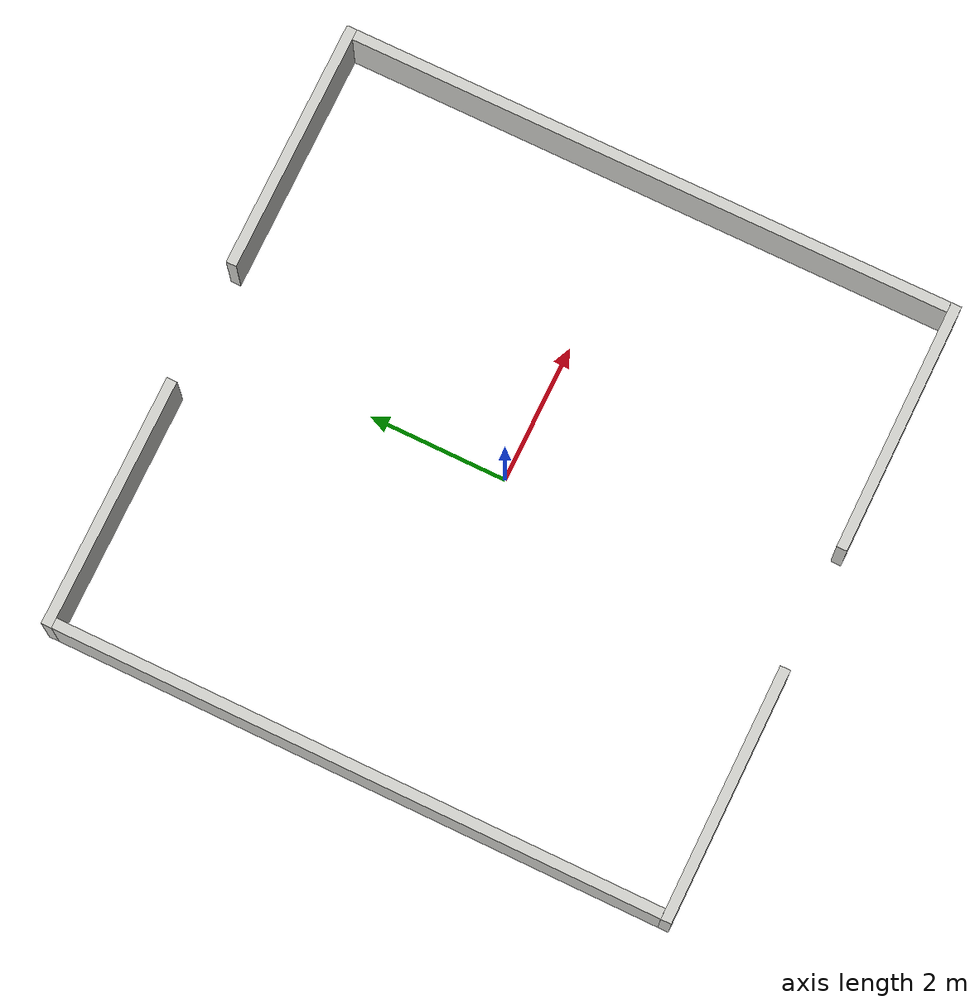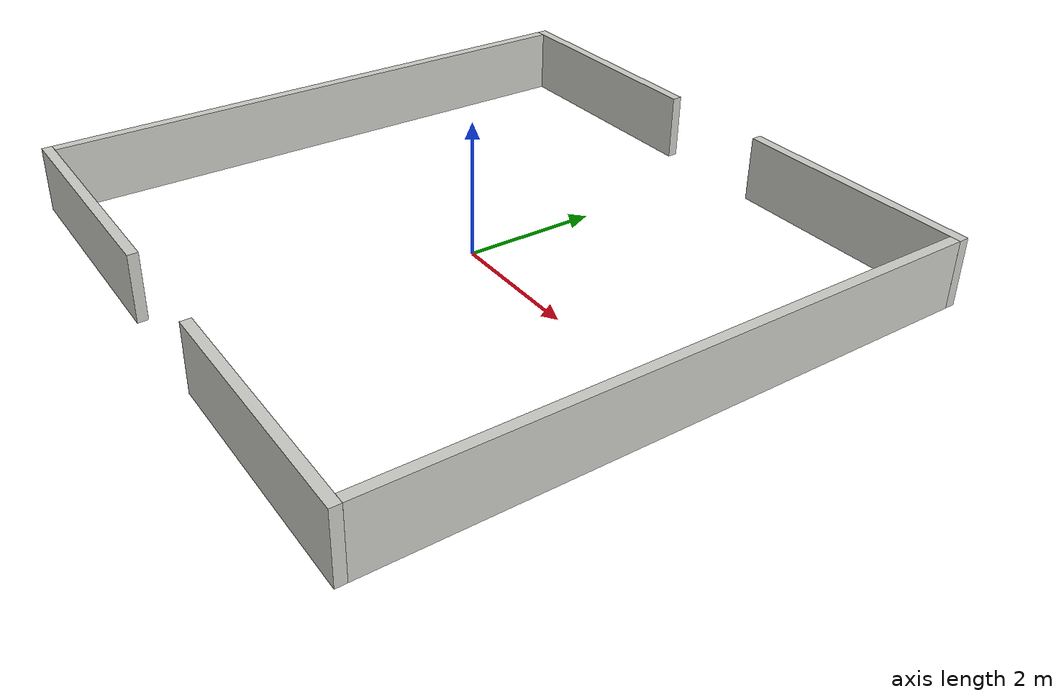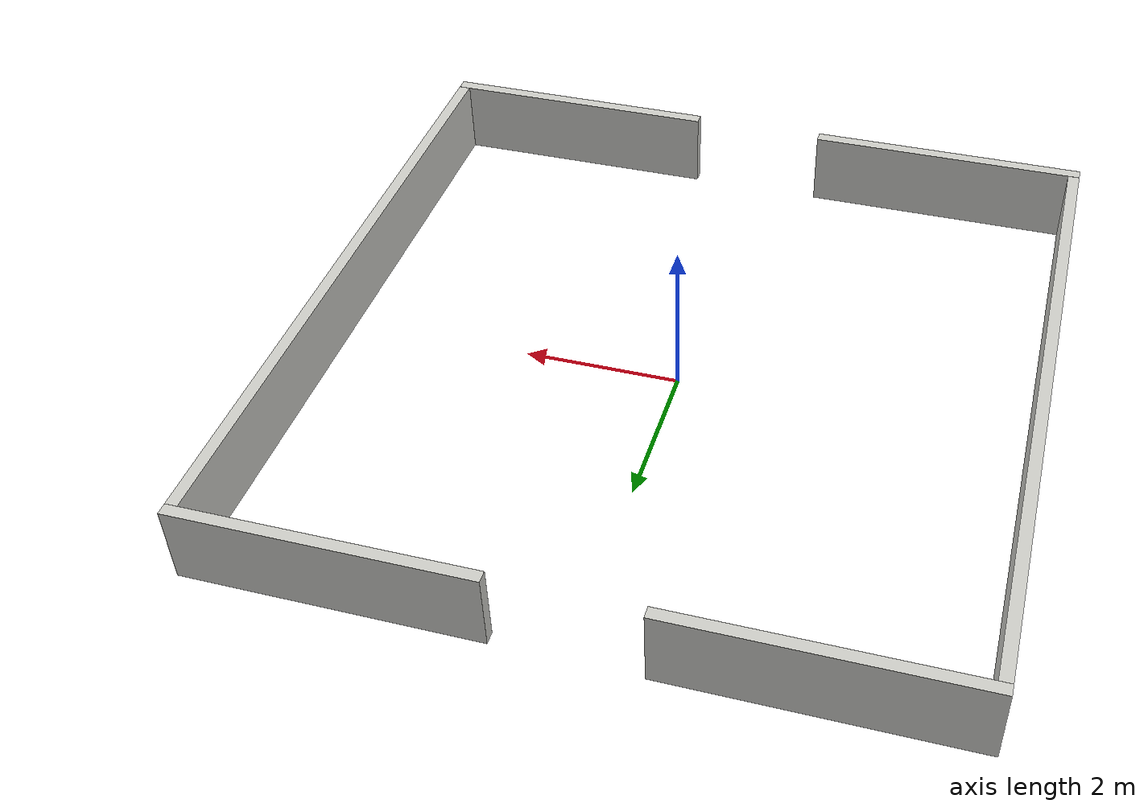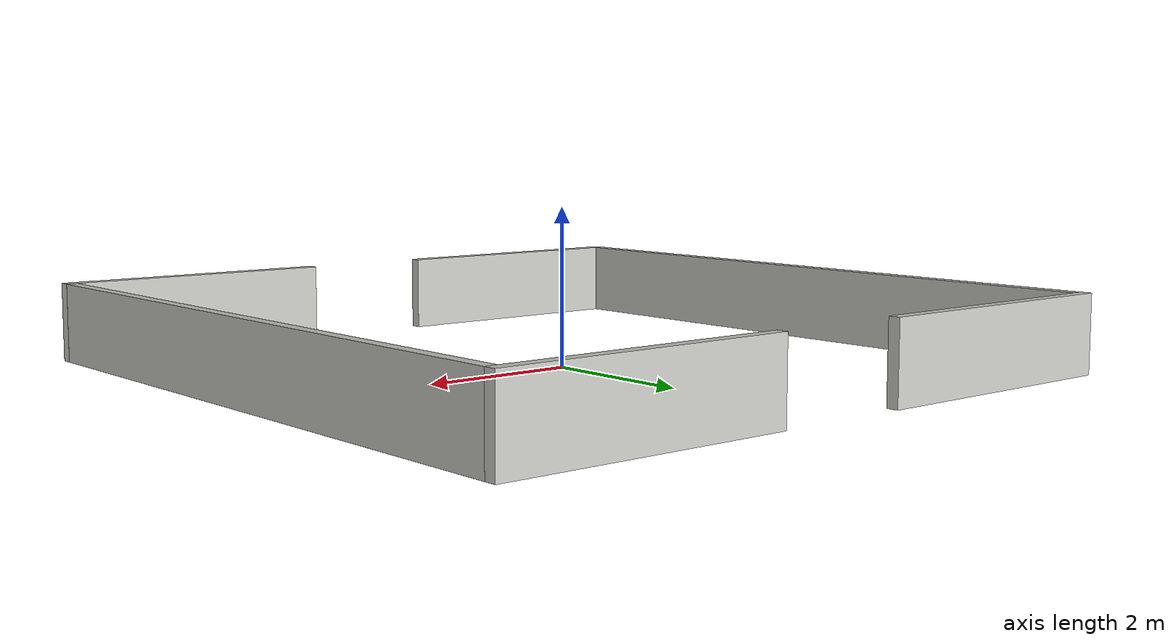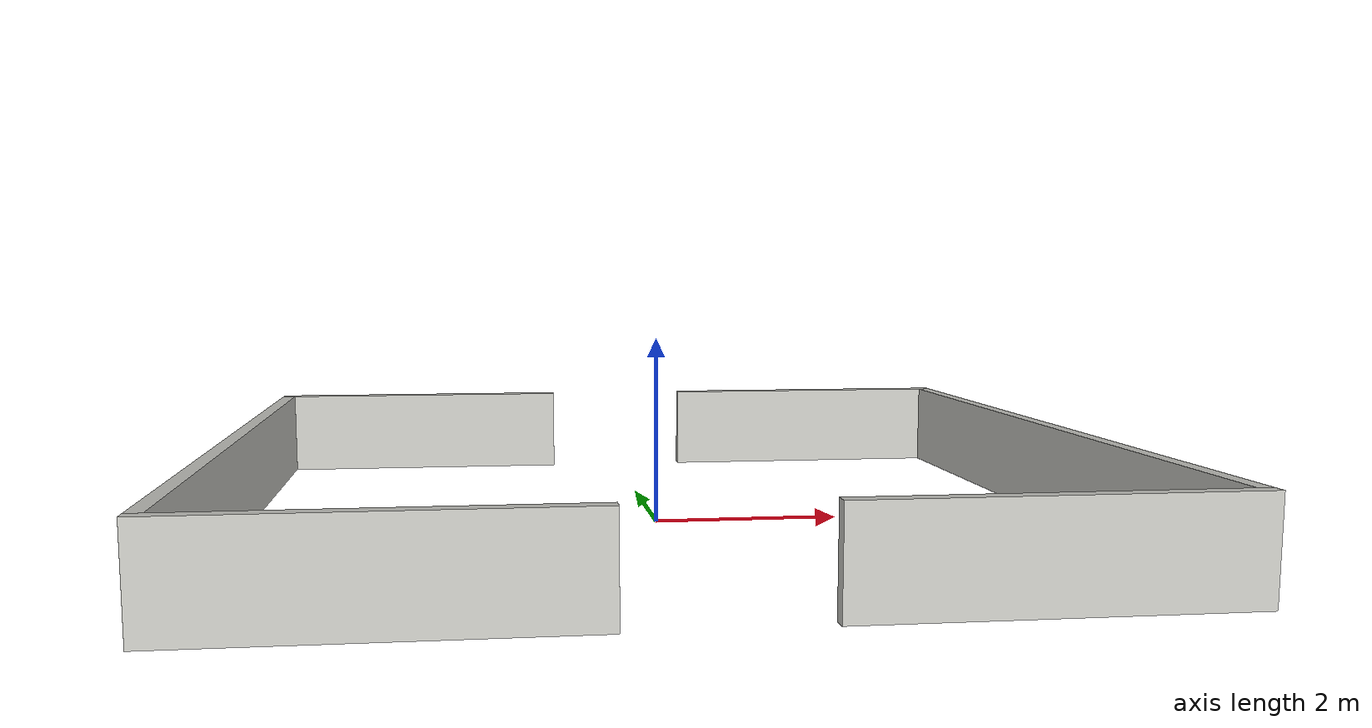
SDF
<?xml version='1.0'?>
<sdf version='1.6'>
  <model name='room_5x5_straight'>
    <static>1</static>
    <pose frame=''>0 0 0 0 -0 0</pose>
    <link name='Wall_1'>
      <collision name='Wall_1_Collision'>
        <geometry>
          <box>
            <size>8.75 0.15 1.0</size>
          </box>
        </geometry>
        <pose frame=''>0 0 0.5 0 -0 0</pose>
      </collision>
      <visual name='Wall_1_Visual'>
        <pose frame=''>0 0 0.5 0 -0 0</pose>
        <geometry>
          <box>
            <size>8.75 0.15 1.0</size>
          </box>
        </geometry>
        <material>
          <script>
            <uri>file://media/materials/scripts/gazebo.material</uri>
            <name>Gazebo/CeilingTiled</name>
          </script>
          <ambient>1 0.764706 0.305882 1</ambient>
        </material>
      </visual>
      <pose frame=''>4.4489 -0.000387 0 0 0 -1.5708</pose>
    </link>
    <link name='Wall_2'>
      <collision name='Wall_2_Collision'>
        <geometry>
          <box>
            <size>8.75 0.15 1.0</size>
          </box>
        </geometry>
        <pose frame=''>0 0 0.5 0 -0 0</pose>
      </collision>
      <visual name='Wall_2_Visual'>
        <pose frame=''>0 0 0.5 0 -0 0</pose>
        <geometry>
          <box>
            <size>8.75 0.15 1.0</size>
          </box>
        </geometry>
        <material>
          <script>
            <uri>file://media/materials/scripts/gazebo.material</uri>
            <name>Gazebo/CeilingTiled</name>
          </script>
          <ambient>1 0.764706 0.305882 1</ambient>
        </material>
      </visual>
      <pose frame=''>-4.44913 0.000846 0 0 0 -1.5708</pose>
    </link>
    <link name='Wall_3'>
      <collision name='Wall_3_Collision'>
        <geometry>
          <box>
            <size>3.65 0.15 1.0</size>
          </box>
        </geometry>
        <pose frame=''>0 0 0.5 0 -0 0</pose>
      </collision>
      <visual name='Wall_3_Visual'>
        <pose frame=''>0 0 0.5 0 -0 0</pose>
        <geometry>
          <box>
            <size>3.65 0.15 1.0</size>
          </box>
        </geometry>
        <material>
          <script>
            <uri>file://media/materials/scripts/gazebo.material</uri>
            <name>Gazebo/CeilingTiled</name>
          </script>
          <ambient>1 0.764706 0.305882 1</ambient>
        </material>
      </visual>
      <pose frame=''>2.69939 -4.45071 0 0 -0 0</pose>
    </link>
    <link name='Wall_4'>
      <collision name='Wall_4_Collision'>
        <geometry>
          <box>
            <size>3.65 0.15 1.0</size>
          </box>
        </geometry>
        <pose frame=''>0 0 0.5 0 -0 0</pose>
      </collision>
      <visual name='Wall_4_Visual'>
        <pose frame=''>0 0 0.5 0 -0 0</pose>
        <geometry>
          <box>
            <size>3.65 0.15 1.0</size>
          </box>
        </geometry>
        <material>
          <script>
            <uri>file://media/materials/scripts/gazebo.material</uri>
            <name>Gazebo/CeilingTiled</name>
          </script>
          <ambient>1 0.764706 0.305882 1</ambient>
        </material>
      </visual>
      <pose frame=''>-2.69939 4.45071 0 0 -0 0</pose>
    </link>
    <link name='Wall_5'>
      <collision name='Wall_5_Collision'>
        <geometry>
          <box>
            <size>3.65 0.15 1.0</size>
          </box>
        </geometry>
        <pose frame=''>0 0 0.5 0 -0 0</pose>
      </collision>
      <visual name='Wall_5_Visual'>
        <pose frame=''>0 0 0.5 0 -0 0</pose>
        <geometry>
          <box>
            <size>3.65 0.15 1.0</size>
          </box>
        </geometry>
        <material>
          <script>
            <uri>file://media/materials/scripts/gazebo.material</uri>
            <name>Gazebo/CeilingTiled</name>
          </script>
          <ambient>1 0.764706 0.305882 1</ambient>
        </material>
      </visual>
      <pose frame=''>2.69903 4.44972 0 0 -0 0</pose>
    </link>
    <link name='Wall_6'>
      <collision name='Wall_6_Collision'>
        <geometry>
          <box>
            <size>3.65 0.15 1.0</size>
          </box>
        </geometry>
        <pose frame=''>0 0 0.5 0 -0 0</pose>
      </collision>
      <visual name='Wall_6_Visual'>
        <pose frame=''>0 0 0.5 0 -0 0</pose>
        <geometry>
          <box>
            <size>3.65 0.15 1.0</size>
          </box>
        </geometry>
        <material>
          <script>
            <uri>file://media/materials/scripts/gazebo.material</uri>
            <name>Gazebo/CeilingTiled</name>
          </script>
          <ambient>1 0.764706 0.305882 1</ambient>
        </material>
      </visual>
      <pose frame=''>-2.69904 -4.44976 0 0 -0 0</pose>
    </link>
  </model>
</sdf>
